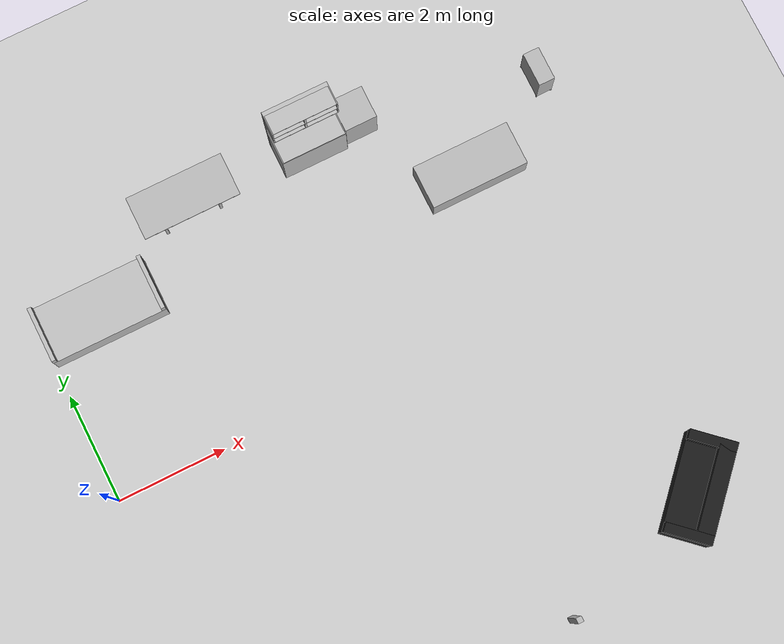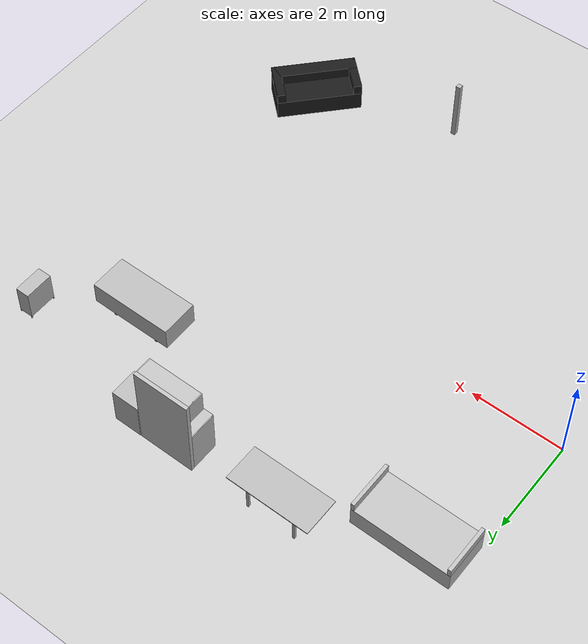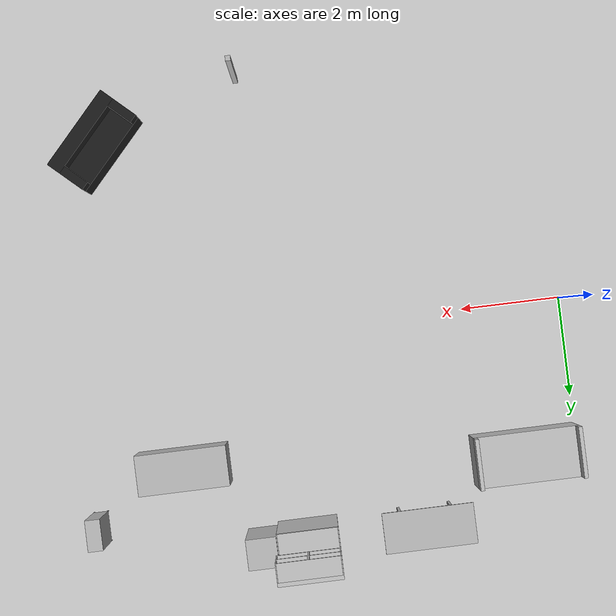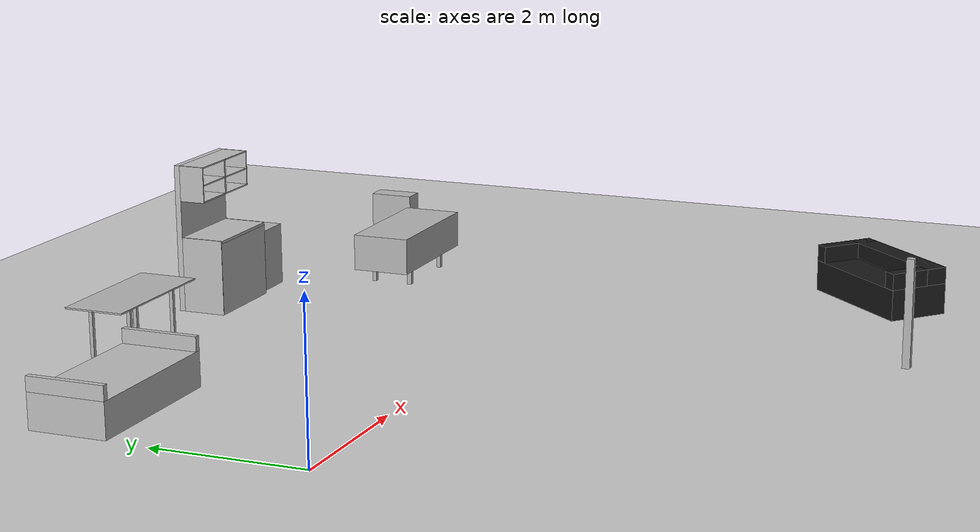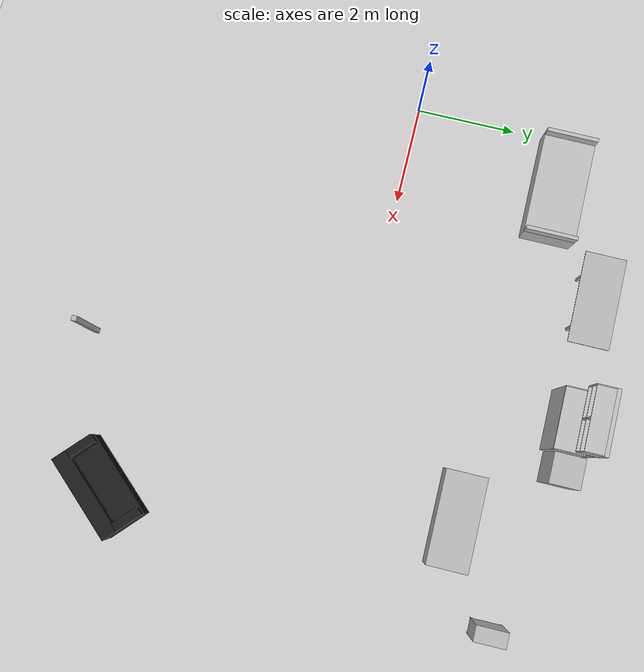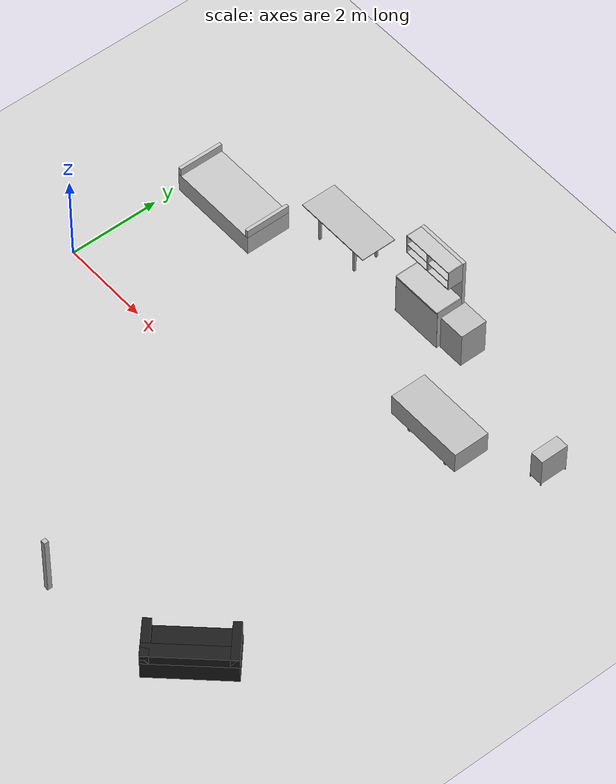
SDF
<sdf version="1.6">
 <world name="rgo2019">
  <light name="sun" type="directional">
   <direction>0.5 0.1 -0.9</direction>
   <pose>0 0 10 0 0 0</pose>
   <specular>0.2 0.2 0.2 1</specular>
   <diffuse>0.8 0.8 0.8 1</diffuse>
   <attenuation>
    <range>1000</range>
    <quadratic>0.001</quadratic>
    <constant>0.9</constant>
    <linear>0.01</linear>
   </attenuation>
  </light>
  <model name="initial_pose" type="waypoint"><pose>-0.4 0.0 0 0 0 0</pose><static>true</static></model>
  <model name="registration_table1" type="waypoint">
   <pose>6.5 -1.0 0 0 0 -0.8</pose>
   <static>true</static>
  </model>
  <model name="registration_table2" type="waypoint">
   <pose>6.0 -0.5 0 0 0 -0.4</pose>
   <static>true</static>
  </model>
  <model name="registration_table3" type="waypoint"><pose>5.0 -0.5 0 0 0 0</pose><static>true</static></model>
  <model name="exit_1_rips" type="waypoint"><pose>6.95 -6.75 0 0 0 -1.571</pose><static>true</static></model>
  <model name="exit_2_rips" type="waypoint"><pose>6.95 -6.15 0 0 0 -1.571</pose><static>true</static></model>
  <model name="exit_3_rips" type="waypoint"><pose>6.95 -5.65 0 0 0 -1.571</pose><static>true</static></model>
  <model name="find_my_mates_initial" type="waypoint">
   <pose>4.0 -0.5 0 0 0 0.0</pose>
   <static>true</static>
  </model>
  <model name="find_my_mates_1" type="waypoint"><pose>7.5 0.4 0 0 0 -1.571</pose><static>true</static></model>
  <model name="serving_drinks_initial" type="waypoint">
   <pose>2.5 -0.5 0 0 0 0.0</pose>
   <static>true</static>
  </model>
  <model name="cleanup_initial" type="waypoint"><pose>2.5 -0.5 0 0 0 0.0</pose><static>true</static></model>
  <model name="receptionist_initial" type="waypoint">
   <pose>1.5 -0.5 0 0 0 -1.571</pose>
   <static>true</static>
  </model>
  <model name="gpsr_meeting_point" type="waypoint"><pose>7.5 -2.5 0 0 0 0</pose><static>true</static></model>
  <model name="hallway" type="room">
   <link name="in">
    <virtual_volume name="in_vv">
     <geometry><box><size>4.02 1.95 2.0</size></box></geometry>
     <pose>0.0 0.025 1.0 0 0 0</pose>
    </virtual_volume>
   </link>
   <pose>2.05 -0.5 0 0 0 0</pose>
   <static>true</static>
  </model>
  <model name="bedroom" type="room">
   <link name="in">
    <virtual_volume name="in_vv">
     <geometry><box><size>4.92 3.95 2.0</size></box></geometry>
     <pose>-0.1 0.075 1.0 0 0 0</pose>
    </virtual_volume>
   </link>
   <pose>2.6 2.5 0 0 0 0</pose>
   <static>true</static>
  </model>
  <model name="living_room" type="room">
   <link name="in">
    <virtual_volume name="in_vv">
     <geometry><box><size>5.9 5.95 2.0</size></box></geometry>
     <pose>0.01 0.525 1.0 0 0 0</pose>
    </virtual_volume>
   </link>
   <pose>7.0 -3.0 0 0 0 0</pose>
   <static>true</static>
  </model>
  <model name="kitchen" type="room">
   <link name="in">
    <virtual_volume name="in_vv">
     <geometry><box><size>4.95 3.95 2.0</size></box></geometry>
     <pose>-0.065 0.075 1.0 0 0 0</pose>
    </virtual_volume>
   </link>
   <pose>7.55 2.5 0 0 0 0</pose>
   <static>true</static>
  </model>
  <model name="bar" type="room">
   <link name="in">
    <virtual_volume name="in_vv">
     <geometry><box><size>3.97 3.95 2.0</size></box></geometry>
     <pose>0.025 0.025 1.0 0 0 0</pose>
    </virtual_volume>
   </link>
   <pose>2.0 -3.5 0 0 0 0</pose>
   <static>true</static>
  </model>
  <include><name>floor</name><uri>model://ground_plane</uri></include>
  <include><pose>1.1 3.07 0 0 0 -1.571</pose><name>bed</name><uri>model://rgo2019/bed_frame</uri></include>
  <include><pose>3.26 4.15 0 0 0 3.141592</pose><name>desk</name><uri>model://rgo2019/desk</uri></include>
  <include><pose>8.9 -4.2 0 0 0 2.4</pose><name>couch</name><uri>model://rgo2019/couch</uri></include>
  <include>
   <pose>6.0 -5.2 0 0 0 1.571</pose>
   <name>coathanger</name>
   <uri>model://rgo2019/coathanger</uri>
  </include>
  <include>
   <pose>7.92 2.45 0 0 0 3.141592</pose>
   <name>kitchen_table</name>
   <uri>model://rgo2019/kitchentable</uri>
  </include>
  <include>
   <pose>5.63 4.21 0 0 0 -1.571</pose>
   <name>kitchen_cabinet</name>
   <uri>model://rgo2019/kitchen_counter</uri>
  </include>
  <include>
   <pose>6.55 4.21 0 0 0 -1.571</pose>
   <name>dishwasher</name>
   <uri>model://rgo2019/dishwasher</uri>
  </include>
  <include><pose>9.79 3.5 0 0 0 3.141592</pose><name>cabinet</name><uri>model://rgo2019/cabinet</uri></include>
  <include><pose>0.5 -1.0 0 0 0 0</pose><name>drop_area</name><uri>model://rgo2019/drop_area</uri></include>
  <physics type="ode">
   <real_time_update_rate>333.0</real_time_update_rate>
   <max_step_size>0.003</max_step_size>
   <ode><constraints><cfm>0.0001</cfm></constraints><solver><type>quick</type><iters>100</iters></solver></ode>
  </physics>
 </world>
</sdf>

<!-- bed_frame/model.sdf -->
<sdf version="1.6">
  <model name="rgo2019/bed_frame">
    <link name="1_link">
      <collision name="1_col">
        <geometry>
          <box>
            <size>1.02 2.12 0.46</size>
          </box>
        </geometry>
      </collision>
      <visual name="1_vis">
        <geometry>
          <box>
            <size>1.02 2.12 0.46</size>
          </box>
        </geometry>
        <material>
          <ambient>0.75 0.75 0.75 1</ambient>
        </material>
      </visual>
      <pose>0 0 0.23 0 0 0</pose>
    </link>
    <link name="2_link">
      <collision name="2_col">
        <geometry>
          <box>
            <size>1.02 0.075 0.19</size>
          </box>
        </geometry>
      </collision>
      <visual name="2_vis">
        <geometry>
          <box>
            <size>1.02 0.075 0.19</size>
          </box>
        </geometry>
        <material>
          <ambient>0.75 0.75 0.75 1</ambient>
        </material>
      </visual>
      <pose>0 -1.0225 0.555 0 0 0</pose>
    </link>
    <link name="3_link">
      <collision name="3_col">
        <geometry>
          <box>
            <size>1.02 0.075 0.19</size>
          </box>
        </geometry>
      </collision>
      <visual name="3_vis">
        <geometry>
          <box>
            <size>1.02 0.075 0.19</size>
          </box>
        </geometry>
        <material>
          <ambient>0.75 0.75 0.75 1</ambient>
        </material>
      </visual>
      <pose>0 1.0225 0.555 0 0 0</pose>
    </link>
    <link name="in_front_of">
      <virtual_volume name="in_front_of_vv">
        <geometry>
          <box>
            <size>2.2 2.1 0.01</size>
          </box>
        </geometry>
        <pose>0.0 0.55 0.005 0 0 0</pose>
      </virtual_volume>
    </link>
    <static>true</static>
  </model>
</sdf>

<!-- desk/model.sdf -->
<sdf version="1.6">
  <model name="rgo2019/desk">
    <link name="1_link">
      <collision name="1_col">
        <geometry>
          <box>
            <size>1.8 0.8 0.02</size>
          </box>
        </geometry>
      </collision>
      <visual name="1_vis">
        <geometry>
          <box>
            <size>1.8 0.8 0.02</size>
          </box>
        </geometry>
      </visual>
      <pose>0.0 0.0 0.73 0 0 0</pose>
    </link>
    <link name="2_link">
      <collision name="2_col">
        <geometry>
          <box>
            <size>0.05 0.05 0.72</size>
          </box>
        </geometry>
      </collision>
      <visual name="2_vis">
        <geometry>
          <box>
            <size>0.05 0.05 0.72</size>
          </box>
        </geometry>
      </visual>
      <pose>-0.515 -0.275 0.36 0 0 0</pose>
    </link>
    <link name="3_link">
      <collision name="3_col">
        <geometry>
          <box>
            <size>0.05 0.05 0.72</size>
          </box>
        </geometry>
      </collision>
      <visual name="3_vis">
        <geometry>
          <box>
            <size>0.05 0.05 0.72</size>
          </box>
        </geometry>
      </visual>
      <pose>0.515 -0.275 0.36 0 0 0</pose>
    </link>
    <link name="4_link">
      <collision name="4_col">
        <geometry>
          <box>
            <size>0.05 0.05 0.72</size>
          </box>
        </geometry>
      </collision>
      <visual name="4_vis">
        <geometry>
          <box>
            <size>0.05 0.05 0.72</size>
          </box>
        </geometry>
      </visual>
      <pose>-0.515 0.275 0.36 0 0 0</pose>
    </link>
    <link name="5_link">
      <collision name="5_col">
        <geometry>
          <box>
            <size>0.05 0.05 0.72</size>
          </box>
        </geometry>
      </collision>
      <visual name="5_vis">
        <geometry>
          <box>
            <size>0.05 0.05 0.72</size>
          </box>
        </geometry>
      </visual>
      <pose>0.515 0.275 0.36 0 0 0</pose>
    </link>
    <link name="on_top_of">
      <virtual_volume name="on_top_of_vv">
        <geometry>
          <box>
            <size>1.78 0.74 0.25</size>
          </box>
        </geometry>
        <pose>0.0 0.0 0.885 0 0 0</pose>
      </virtual_volume>
    </link>
    <link name="in_front_of">
      <virtual_volume name="in_front_of_vv">
        <geometry>
          <box>
            <size>1.4 0.3 0.01</size>
          </box>
        </geometry>
        <pose>0.0 0.85 0.005 0 0 0</pose>
      </virtual_volume>
    </link>
    <static>true</static>
  </model>
</sdf>

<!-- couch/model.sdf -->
<sdf version="1.6">
  <model name="rgo2019/couch">
    <link name="1_link">
      <collision name="1_col">
        <geometry>
          <box>
            <size>0.85 1.8 0.42</size>
          </box>
        </geometry>
      </collision>
      <visual name="1_vis">
        <geometry>
          <box>
            <size>0.85 1.8 0.42</size>
          </box>
        </geometry>
        <material>
          <ambient>0.1 0.1 0.1 1</ambient>
        </material>
      </visual>
      <pose>0.0 0.0 0.21 0 0 0</pose>
    </link>
    <link name="2_link">
      <collision name="2_col">
        <geometry>
          <box>
            <size>0.3 1.8 0.225</size>
          </box>
        </geometry>
      </collision>
      <visual name="2_vis">
        <geometry>
          <box>
            <size>0.3 1.8 0.225</size>
          </box>
        </geometry>
        <material>
          <ambient>0.1 0.1 0.1 1</ambient>
        </material>
      </visual>
      <pose>-0.275 0.0 0.5325 0 0 0</pose>
    </link>
    <link name="3_link">
      <collision name="3_col">
        <geometry>
          <box>
            <size>0.85 0.175 0.225</size>
          </box>
        </geometry>
      </collision>
      <visual name="3_vis">
        <geometry>
          <box>
            <size>0.85 0.175 0.225</size>
          </box>
        </geometry>
        <material>
          <ambient>0.1 0.1 0.1 1</ambient>
        </material>
      </visual>
      <pose>0.0 -0.812 0.5325 0 0 0</pose>
    </link>
    <link name="4_link">
      <collision name="4_col">
        <geometry>
          <box>
            <size>0.85 0.175 0.225</size>
          </box>
        </geometry>
      </collision>
      <visual name="4_vis">
        <geometry>
          <box>
            <size>0.85 0.175 0.225</size>
          </box>
        </geometry>
        <material>
          <ambient>0.1 0.1 0.1 1</ambient>
        </material>
      </visual>
      <pose>0.0 0.812 0.5325 0 0 0</pose>
    </link>
    <link name="on_top_of">
      <virtual_volume name="on_top_of_vv">
        <geometry>
          <box>
            <size>0.35 1.36 0.32</size>
          </box>
        </geometry>
        <pose>0.175 0.0 0.6 0 0 0</pose>
      </virtual_volume>
    </link>
    <link name="in_front_of">
      <virtual_volume name="in_front_of_vv">
        <geometry>
          <box>
            <size>0.2 0.6 0.01</size>
          </box>
        </geometry>
        <pose>1.05 0.0 0.005 0 0 0</pose>
      </virtual_volume>
    </link>
    <static>true</static>
  </model>
</sdf>

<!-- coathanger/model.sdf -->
<sdf version="1.6">
  <model name="rgo2019/coathanger">
    <link name="1_link">
      <collision name="1_col">
        <geometry>
          <box>
            <size>0.1 0.1 1.4</size>
          </box>
        </geometry>
      </collision>
      <visual name="1_vis">
        <geometry>
          <box>
            <size>0.1 0.1 1.4</size>
          </box>
        </geometry>
      </visual>
      <pose>0.0 0.0 0.7 0 0 0</pose>
    </link>
    <link name="in_front_of">
      <virtual_volume name="in_front_of_vv">
        <geometry>
          <box>
            <size>0.3 0.2 0.01</size>
          </box>
        </geometry>
        <pose>0.45 0.0 0.005 0 0 0</pose>
      </virtual_volume>
    </link>
    <static>true</static>
  </model>
</sdf>

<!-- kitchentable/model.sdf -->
<sdf version="1.6">
  <model name="rgo2019/kitchentable">
    <link name="1_link">
      <collision name="1_col">
        <geometry>
          <box>
            <size>1.8 0.8 0.5</size>
          </box>
        </geometry>
      </collision>
      <visual name="1_vis">
        <geometry>
          <box>
            <size>1.8 0.8 0.5</size>
          </box>
        </geometry>
      </visual>
      <pose>0.0 0.0 0.49 0 0 0</pose>
    </link>
    <link name="2_link">
      <collision name="2_col">
        <geometry>
          <box>
            <size>0.06 0.06 0.24</size>
          </box>
        </geometry>
      </collision>
      <visual name="2_vis">
        <geometry>
          <box>
            <size>0.06 0.06 0.24</size>
          </box>
        </geometry>
      </visual>
      <pose>-0.51 -0.27 0.12 0 0 0</pose>
    </link>
    <link name="3_link">
      <collision name="3_col">
        <geometry>
          <box>
            <size>0.06 0.06 0.24</size>
          </box>
        </geometry>
      </collision>
      <visual name="3_vis">
        <geometry>
          <box>
            <size>0.06 0.06 0.24</size>
          </box>
        </geometry>
      </visual>
      <pose>0.51 -0.27 0.12 0 0 0</pose>
    </link>
    <link name="4_link">
      <collision name="4_col">
        <geometry>
          <box>
            <size>0.06 0.06 0.24</size>
          </box>
        </geometry>
      </collision>
      <visual name="4_vis">
        <geometry>
          <box>
            <size>0.06 0.06 0.24</size>
          </box>
        </geometry>
      </visual>
      <pose>-0.51 0.27 0.12 0 0 0</pose>
    </link>
    <link name="5_link">
      <collision name="5_col">
        <geometry>
          <box>
            <size>0.06 0.06 0.24</size>
          </box>
        </geometry>
      </collision>
      <visual name="5_vis">
        <geometry>
          <box>
            <size>0.06 0.06 0.24</size>
          </box>
        </geometry>
      </visual>
      <pose>0.51 0.27 0.12 0 0 0</pose>
    </link>
    <link name="on_top_of">
      <virtual_volume name="on_top_of_vv">
        <geometry>
          <box>
            <size>1.78 0.74 0.25</size>
          </box>
        </geometry>
        <pose>0.0 0.0 0.885 0 0 0</pose>
      </virtual_volume>
    </link>
    <link name="in_front_of">
      <virtual_volume name="in_front_of_vv">
        <geometry>
          <box>
            <size>0.2 0.6 0.01</size>
          </box>
        </geometry>
        <pose>1.4 0.0 0.005 0 0 0</pose>
      </virtual_volume>
    </link>
    <static>true</static>
  </model>
</sdf>

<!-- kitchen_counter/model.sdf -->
<sdf version="1.6">
  <model name="rgo2019/kitchen_counter">
    <link name="1_link">
      <collision name="1_col">
        <geometry>
          <box>
            <size>0.59 0.018 1.02</size>
          </box>
        </geometry>
      </collision>
      <visual name="1_vis">
        <geometry>
          <box>
            <size>0.59 0.018 1.02</size>
          </box>
        </geometry>
        <material>
          <ambient>0.75 0.75 0.75 1</ambient>
        </material>
      </visual>
      <pose>0.078 -0.5935 0.51 0 0 0</pose>
    </link>
    <link name="2_link">
      <collision name="2_col">
        <geometry>
          <box>
            <size>0.59 0.018 1.02</size>
          </box>
        </geometry>
      </collision>
      <visual name="2_vis">
        <geometry>
          <box>
            <size>0.59 0.018 1.02</size>
          </box>
        </geometry>
        <material>
          <ambient>0.75 0.75 0.75 1</ambient>
        </material>
      </visual>
      <pose>0.078 0.5935 0.51 0 0 0</pose>
    </link>
    <link name="3_link">
      <collision name="3_col">
        <geometry>
          <box>
            <size>0.078 1.205 2.002</size>
          </box>
        </geometry>
      </collision>
      <visual name="3_vis">
        <geometry>
          <box>
            <size>0.078 1.205 2.002</size>
          </box>
        </geometry>
        <material>
          <ambient>0.75 0.75 0.75 1</ambient>
        </material>
      </visual>
      <pose>-0.256 0 1.001 0 0 0</pose>
    </link>
    <link name="4_link">
      <collision name="4_col">
        <geometry>
          <box>
            <size>0.6 1.169 0.038</size>
          </box>
        </geometry>
      </collision>
      <visual name="4_vis">
        <geometry>
          <box>
            <size>0.6 1.169 0.038</size>
          </box>
        </geometry>
        <material>
          <ambient>0.75 0.75 0.75 1</ambient>
        </material>
      </visual>
      <pose>0.083 0 1.001 0 0 0</pose>
    </link>
    <link name="5_link">
      <collision name="5_col">
        <geometry>
          <box>
            <size>0.59 1.169 0.138</size>
          </box>
        </geometry>
      </collision>
      <visual name="5_vis">
        <geometry>
          <box>
            <size>0.59 1.169 0.138</size>
          </box>
        </geometry>
        <material>
          <ambient>0.75 0.75 0.75 1</ambient>
        </material>
      </visual>
      <pose>0.078 0 0.069 0 0 0</pose>
    </link>
    <link name="6_link">
      <collision name="6_col">
        <geometry>
          <box>
            <size>0.572 1.169 0.018</size>
          </box>
        </geometry>
      </collision>
      <visual name="6_vis">
        <geometry>
          <box>
            <size>0.572 1.169 0.018</size>
          </box>
        </geometry>
        <material>
          <ambient>0.75 0.75 0.75 1</ambient>
        </material>
      </visual>
      <pose>0.069 0 0.544 0 0 0</pose>
    </link>
    <link name="7_link">
      <collision name="7_col">
        <geometry>
          <box>
            <size>0.572 0.018 1.0</size>
          </box>
        </geometry>
      </collision>
      <visual name="7_vis">
        <geometry>
          <box>
            <size>0.572 0.018 1.0</size>
          </box>
        </geometry>
        <material>
          <ambient>0.75 0.75 0.75 1</ambient>
        </material>
      </visual>
      <pose>0.069 0 0.5 0 0 0</pose>
    </link>
    <link name="8_link">
      <collision name="8_col">
        <geometry>
          <box>
            <size>0.35 0.018 0.482</size>
          </box>
        </geometry>
      </collision>
      <visual name="8_vis">
        <geometry>
          <box>
            <size>0.35 0.018 0.482</size>
          </box>
        </geometry>
        <material>
          <ambient>0.75 0.75 0.75 1</ambient>
        </material>
      </visual>
      <pose>-0.042 -0.5935 1.76 0 0 0</pose>
    </link>
    <link name="9_link">
      <collision name="9_col">
        <geometry>
          <box>
            <size>0.35 0.018 0.482</size>
          </box>
        </geometry>
      </collision>
      <visual name="9_vis">
        <geometry>
          <box>
            <size>0.35 0.018 0.482</size>
          </box>
        </geometry>
        <material>
          <ambient>0.75 0.75 0.75 1</ambient>
        </material>
      </visual>
      <pose>-0.042 0.5935 1.76 0 0 0</pose>
    </link>
    <link name="10_link">
      <collision name="10_col">
        <geometry>
          <box>
            <size>0.35 1.169 0.018</size>
          </box>
        </geometry>
      </collision>
      <visual name="10_vis">
        <geometry>
          <box>
            <size>0.35 1.169 0.018</size>
          </box>
        </geometry>
        <material>
          <ambient>0.75 0.75 0.75 1</ambient>
        </material>
      </visual>
      <pose>-0.042 0 1.993 0 0 0</pose>
    </link>
    <link name="11_link">
      <collision name="11_col">
        <geometry>
          <box>
            <size>0.35 1.169 0.018</size>
          </box>
        </geometry>
      </collision>
      <visual name="11_vis">
        <geometry>
          <box>
            <size>0.35 1.169 0.018</size>
          </box>
        </geometry>
        <material>
          <ambient>0.75 0.75 0.75 1</ambient>
        </material>
      </visual>
      <pose>-0.042 0 1.529 0 0 0</pose>
    </link>
    <link name="12_link">
      <collision name="12_col">
        <geometry>
          <box>
            <size>0.35 1.169 0.018</size>
          </box>
        </geometry>
      </collision>
      <visual name="12_vis">
        <geometry>
          <box>
            <size>0.35 1.169 0.018</size>
          </box>
        </geometry>
        <material>
          <ambient>0.75 0.75 0.75 1</ambient>
        </material>
      </visual>
      <pose>-0.042 0 1.754 0 0 0</pose>
    </link>
    <link name="13_link">
      <collision name="13_col">
        <geometry>
          <box>
            <size>0.35 0.036 0.482</size>
          </box>
        </geometry>
      </collision>
      <visual name="13_vis">
        <geometry>
          <box>
            <size>0.35 0.036 0.482</size>
          </box>
        </geometry>
        <material>
          <ambient>0.75 0.75 0.75 1</ambient>
        </material>
      </visual>
      <pose>-0.042 0 1.76 0 0 0</pose>
    </link>
    <link name="14_link">
      <collision name="14_col">
        <geometry>
          <box>
            <size>0.018 1.2 1.0</size>
          </box>
        </geometry>
      </collision>
      <visual name="14_vis">
        <geometry>
          <box>
            <size>0.018 1.2 1.0</size>
          </box>
        </geometry>
        <material>
          <ambient>0.75 0.75 0.75 1</ambient>
        </material>
      </visual>
      <pose>0.365 0.0 0.50 0 0 0</pose>
    </link>
    <link name="in_front_of">
      <virtual_volume name="in_front_of_vv">
        <geometry>
          <box>
            <size>0.2 1.005 0.01</size>
          </box>
        </geometry>
        <pose>1.3 0.0 0.005 0 0 0</pose>
      </virtual_volume>
    </link>
    <link name="on_top_of">
      <virtual_volume name="on_top_of_vv">
        <geometry>
          <box>
            <size>0.53 1.14 0.3</size>
          </box>
        </geometry>
        <pose>0.078 0.0 1.19 0 0 0</pose>
      </virtual_volume>
    </link>
    <static>true</static>
  </model>
</sdf>

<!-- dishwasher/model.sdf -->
<sdf version="1.6">
  <model name="rgo2019/dishwasher">
    <link name="1_link">
      <collision name="1_col">
        <geometry>
          <box>
            <size>0.6 0.6 0.85</size>
          </box>
        </geometry>
      </collision>
      <visual name="1_vis">
        <geometry>
          <box>
            <size>0.6 0.6 0.85</size>
          </box>
        </geometry>
      </visual>
      <pose>0.0 0.0 0.425 0 0 0</pose>
    </link>
    <link name="on_top_of">
      <virtual_volume name="on_top_of_vv">
        <geometry>
          <box>
            <size>0.58 0.54 0.25</size>
          </box>
        </geometry>
        <pose>0.0 0.0 0.995 0 0 0</pose>
      </virtual_volume>
    </link>
    <link name="in_front_of">
      <virtual_volume name="in_front_of_vv">
        <geometry>
          <box>
            <size>0.2 0.4 0.01</size>
          </box>
        </geometry>
        <pose>0.8 0.0 0.005 0 0 0</pose>
      </virtual_volume>
    </link>
    <static>true</static>
  </model>
</sdf>

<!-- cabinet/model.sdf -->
<sdf version="1.6">
  <model name="rgo2019/cabinet">
    <link name="1_link">
      <collision name="1_col">
        <geometry>
          <box>
            <size/>
          </box>
        </geometry>
        <name>1</name>
      </collision>
      <visual name="1_vis">
        <geometry>
          <box>
            <size>0.3 0.62 0.65</size>
          </box>
        </geometry>
        <name>1</name>
      </visual>
      <pose>0.0 0.0 0.375 0 0 0</pose>
      <name>1</name>
    </link>
    <link name="2_link">
      <collision name="2_col">
        <geometry>
          <box>
            <size>0.02 0.02 0.05</size>
          </box>
        </geometry>
        <name>2</name>
      </collision>
      <visual name="2_vis">
        <geometry>
          <box>
            <size>0.02 0.02 0.05</size>
          </box>
        </geometry>
        <name>2</name>
      </visual>
      <pose>-0.14 -0.3 0.025 0 0 0</pose>
      <name>2</name>
    </link>
    <link name="3_link">
      <collision name="3_col">
        <geometry>
          <box>
            <size>0.02 0.02 0.05</size>
          </box>
        </geometry>
        <name>3</name>
      </collision>
      <visual name="3_vis">
        <geometry>
          <box>
            <size>0.02 0.02 0.05</size>
          </box>
        </geometry>
        <name>3</name>
      </visual>
      <pose>-0.14 0.3 0.025 0 0 0</pose>
      <name>3</name>
    </link>
    <link name="4_link">
      <collision name="4_col">
        <geometry>
          <box>
            <size>0.02 0.02 0.05</size>
          </box>
        </geometry>
        <name>4</name>
      </collision>
      <visual name="4_vis">
        <geometry>
          <box>
            <size>0.02 0.02 0.05</size>
          </box>
        </geometry>
        <name>4</name>
      </visual>
      <pose>0.14 -0.3 0.025 0 0 0</pose>
      <name>4</name>
    </link>
    <link name="5_link">
      <collision name="5_col">
        <geometry>
          <box>
            <size>0.02 0.02 0.05</size>
          </box>
        </geometry>
        <name>5</name>
      </collision>
      <visual name="5_vis">
        <geometry>
          <box>
            <size>0.02 0.02 0.05</size>
          </box>
        </geometry>
        <name>5</name>
      </visual>
      <pose>0.14 0.3 0.025 0 0 0</pose>
      <name>5</name>
    </link>
    <link name="on_top_of">
      <virtual_volume name="on_top_of_vv">
        <geometry>
          <box>
            <size>0.24 0.6 0.25</size>
          </box>
        </geometry>
        <pose>0.0 0.0 0.845 0 0 0</pose>
        <name>on_top_of</name>
      </virtual_volume>
      <name>on_top_of</name>
    </link>
    <link name="in_front_of">
      <virtual_volume name="in_front_of_vv">
        <geometry>
          <box>
            <size>0.2 0.2 0.01</size>
          </box>
        </geometry>
        <pose>0.4 0.0 0.005 0 0 0</pose>
        <name>in_front_of</name>
      </virtual_volume>
      <name>in_front_of</name>
    </link>
    <static>true</static>
    <name>rgo2019/cabinet</name>
  </model>
</sdf>

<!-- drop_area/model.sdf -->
<sdf version="1.6">
  <model name="rgo2019/drop_area">
    <link name="1_link">
      <collision name="1_col">
        <geometry>
          <box>
            <size>0.001 0.001 0.001</size>
          </box>
        </geometry>
      </collision>
      <visual name="1_vis">
        <geometry>
          <box>
            <size>0.001 0.001 0.001</size>
          </box>
        </geometry>
      </visual>
      <pose>0.0 0.0 0.0005 0 0 0</pose>
    </link>
    <link name="on_top_of">
      <virtual_volume name="on_top_of_vv">
        <geometry>
          <box>
            <size>1.0 1.0 0.2</size>
          </box>
        </geometry>
        <pose>0.0 0.0 1.0 0 0 0</pose>
      </virtual_volume>
    </link>
    <link name="in_front_of">
      <virtual_volume name="in_front_of_vv">
        <geometry>
          <box>
            <size>0.2 0.15 0.01</size>
          </box>
        </geometry>
        <pose>0.65 0.0 0.005 0 0 0</pose>
      </virtual_volume>
    </link>
    <static>true</static>
  </model>
</sdf>
